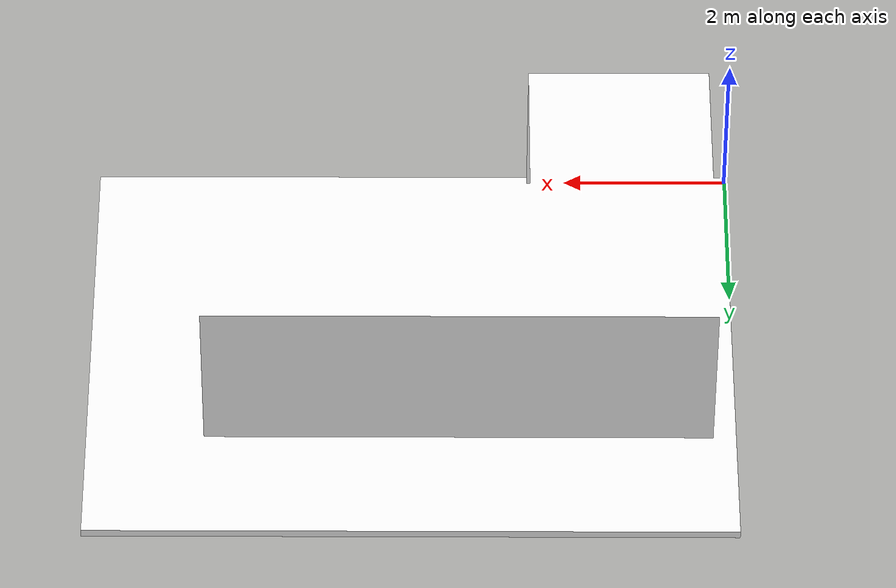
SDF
<?xml version='1.0'?>
<sdf version='1.6'>
    <model name="cen2">
        <link name="cen2_link">
            <pose>0 0 0 0 0 0</pose>
            <collision name="cen2_collision">
                <geometry>
                    <mesh>
                        <uri>model://cen_missao2_2/meshes/cen_ind_missao2_2.dae</uri>
                    </mesh>
                </geometry>
            </collision>
            <visual name="cen2_visual">
                <cast_shadows>1</cast_shadows>
                <geometry>
                    <mesh>
                        <uri>model://cen_missao2_2/meshes/cen_ind_missao2_2.dae</uri>
                    </mesh>
                </geometry>
            </visual>
        </link>
    </model>
</sdf>
